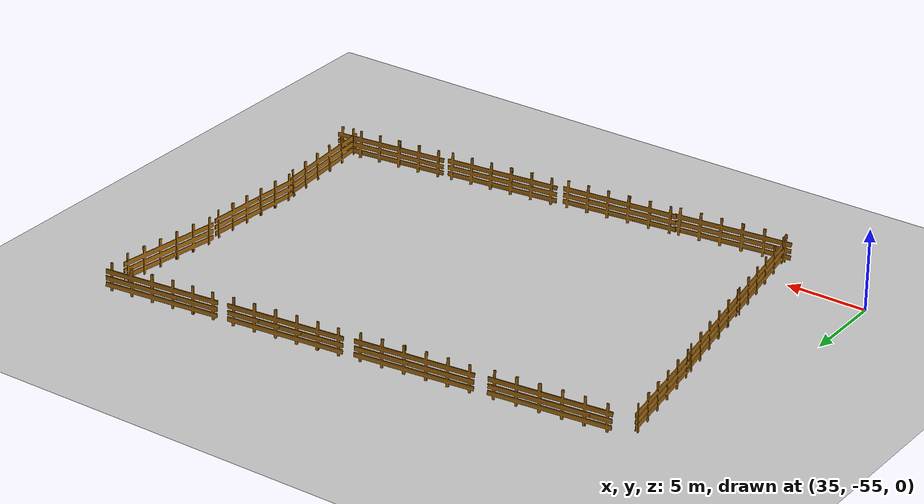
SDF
<sdf version="1.6">
 <world name="default">
  <light name="sun" type="directional">
   <pose>0 0 10 0 -0 0</pose>
   <diffuse>0.8 0.8 0.8 1</diffuse>
   <specular>0.2 0.2 0.2 1</specular>
   <attenuation>
    <range>1000</range>
    <constant>0.9</constant>
    <linear>0.01</linear>
    <quadratic>0.001</quadratic>
   </attenuation>
   <direction>-0.5 0.1 -0.9</direction>
  </light>
  <physics name="default_physics" default="0" type="ode">
   <real_time_update_rate>1000</real_time_update_rate>
   <real_time_factor>1</real_time_factor>
   <max_step_size>0.001</max_step_size>
  </physics>
  <gravity>0 0 -9.8</gravity>
  <magnetic_field>6e-06 2.3e-05 -4.2e-05</magnetic_field>
  <atmosphere type="adiabatic"/>
  <scene>
   <sky><clouds><speed>12</speed></clouds></sky>
   <shadows>1</shadows>
   <ambient>0.4 0.4 0.4 1</ambient>
   <background>0.7 0.7 0.7 1</background>
  </scene>
  <spherical_coordinates>
   <surface_model>EARTH_WGS84</surface_model>
   <latitude_deg>0</latitude_deg>
   <longitude_deg>0</longitude_deg>
   <elevation>0</elevation>
   <heading_deg>0</heading_deg>
  </spherical_coordinates>
  <model name="fence_5">
   <static>1</static>
   <link name="link">
    <inertial>
     <mass>100</mass>
     <inertia><ixx>192.33</ixx><ixy>0</ixy><ixz>0</ixz><iyy>12.33</iyy><iyz>0</iyz><izz>204</izz></inertia>
    </inertial>
    <collision name="collision">
     <geometry><mesh><uri>model://fence_5/meshes/fence_5_brown.dae</uri><scale>1 1 1</scale></mesh></geometry>
    </collision>
    <visual name="visual">
     <geometry><mesh><uri>model://fence_5/meshes/fence_5_brown.dae</uri><scale>1 1 1</scale></mesh></geometry>
    </visual>
   </link>
   <pose>41.6449 -52.737 1.01497 0.014116 0.007603 -1.39043</pose>
  </model>
  <model name="fence_5_clone_0_clone">
   <static>1</static>
   <link name="link">
    <inertial>
     <mass>100</mass>
     <inertia><ixx>192.33</ixx><ixy>0</ixy><ixz>0</ixz><iyy>12.33</iyy><iyz>0</iyz><izz>204</izz></inertia>
    </inertial>
    <collision name="collision">
     <geometry><mesh><uri>model://fence_5/meshes/fence_5_brown.dae</uri><scale>1 1 1</scale></mesh></geometry>
    </collision>
    <visual name="visual">
     <geometry><mesh><uri>model://fence_5/meshes/fence_5_brown.dae</uri><scale>1 1 1</scale></mesh></geometry>
    </visual>
   </link>
   <pose>69.2217 -35.0688 1.89165 -0.006758 0.071374 -1.61301</pose>
  </model>
  <model name="fence_5_clone_0_clone_0">
   <static>1</static>
   <link name="link">
    <inertial>
     <mass>100</mass>
     <inertia><ixx>192.33</ixx><ixy>0</ixy><ixz>0</ixz><iyy>12.33</iyy><iyz>0</iyz><izz>204</izz></inertia>
    </inertial>
    <collision name="collision">
     <geometry><mesh><uri>model://fence_5/meshes/fence_5_brown.dae</uri><scale>1 1 1</scale></mesh></geometry>
    </collision>
    <visual name="visual">
     <geometry><mesh><uri>model://fence_5/meshes/fence_5_brown.dae</uri><scale>1 1 1</scale></mesh></geometry>
    </visual>
   </link>
   <pose>69.2517 -42.5183 1.4512 -0.00172 0.070673 -1.54061</pose>
  </model>
  <model name="fence_5_clone_0_clone_1">
   <static>1</static>
   <link name="link">
    <inertial>
     <mass>100</mass>
     <inertia><ixx>192.33</ixx><ixy>0</ixy><ixz>0</ixz><iyy>12.33</iyy><iyz>0</iyz><izz>204</izz></inertia>
    </inertial>
    <collision name="collision">
     <geometry><mesh><uri>model://fence_5/meshes/fence_5_brown.dae</uri><scale>1 1 1</scale></mesh></geometry>
    </collision>
    <visual name="visual">
     <geometry><mesh><uri>model://fence_5/meshes/fence_5_brown.dae</uri><scale>1 1 1</scale></mesh></geometry>
    </visual>
   </link>
   <pose>69.8432 -49.6932 1.08703 -0.01162 0.02213 -1.47072</pose>
  </model>
  <model name="fence_5_clone_0_clone_1_clone_clone_1">
   <static>1</static>
   <link name="link">
    <inertial>
     <mass>100</mass>
     <inertia><ixx>192.33</ixx><ixy>0</ixy><ixz>0</ixz><iyy>12.33</iyy><iyz>0</iyz><izz>204</izz></inertia>
    </inertial>
    <collision name="collision">
     <geometry><mesh><uri>model://fence_5/meshes/fence_5_brown.dae</uri><scale>1 1 1</scale></mesh></geometry>
    </collision>
    <visual name="visual">
     <geometry><mesh><uri>model://fence_5/meshes/fence_5_brown.dae</uri><scale>1 1 1</scale></mesh></geometry>
    </visual>
   </link>
   <pose>44.7747 -57.3444 0.883617 -0.084624 0.000646 -3.03348</pose>
  </model>
  <model name="fence_5_clone_0_clone_clone_clone_0">
   <static>1</static>
   <link name="link">
    <inertial>
     <mass>100</mass>
     <inertia><ixx>192.33</ixx><ixy>0</ixy><ixz>0</ixz><iyy>12.33</iyy><iyz>0</iyz><izz>204</izz></inertia>
    </inertial>
    <collision name="collision">
     <geometry><mesh><uri>model://fence_5/meshes/fence_5_brown.dae</uri><scale>1 1 1</scale></mesh></geometry>
    </collision>
    <visual name="visual">
     <geometry><mesh><uri>model://fence_5/meshes/fence_5_brown.dae</uri><scale>1 1 1</scale></mesh></geometry>
    </visual>
   </link>
   <pose>41.5544 -33.278 1.57982 0.084583 -0.00842 0.112795</pose>
  </model>
  <model name="grass_ground_plane">
   <static>1</static>
   <link name="link">
    <collision name="collision">
     <geometry><plane><normal>0 0 1</normal><size>200 200</size></plane></geometry>
     <surface><friction><ode><mu>0.5</mu><mu2>0.5</mu2></ode></friction></surface>
    </collision>
    <visual name="visual">
     <cast_shadows>0</cast_shadows>
     <geometry><plane><normal>0 0 1</normal><size>200 200</size></plane></geometry>
     <material>
      <script>
       <uri>model://grass_ground_plane/materials/scripts/grass_ground_plane.material</uri>
       <name>GrassGroundPlane/Image</name>
      </script>
     </material>
    </visual>
   </link>
  </model>
  <model name="fence_5_clone_0_clone_1_clone_clone_1_clone">
   <static>1</static>
   <link name="link">
    <inertial>
     <mass>100</mass>
     <inertia><ixx>192.33</ixx><ixy>0</ixy><ixz>0</ixz><iyy>12.33</iyy><iyz>0</iyz><izz>204</izz></inertia>
    </inertial>
    <collision name="collision">
     <geometry><mesh><uri>model://fence_5/meshes/fence_5_brown.dae</uri><scale>1 1 1</scale></mesh></geometry>
    </collision>
    <visual name="visual">
     <geometry><mesh><uri>model://fence_5/meshes/fence_5_brown.dae</uri><scale>1 1 1</scale></mesh></geometry>
    </visual>
   </link>
   <pose>51.8829 -56.4713 0.89101 -0.084624 0.000646 -3.03348</pose>
  </model>
  <model name="fence_5_clone_0_clone_1_clone_clone_1_clone_0">
   <static>1</static>
   <link name="link">
    <inertial>
     <mass>100</mass>
     <inertia><ixx>192.33</ixx><ixy>0</ixy><ixz>0</ixz><iyy>12.33</iyy><iyz>0</iyz><izz>204</izz></inertia>
    </inertial>
    <collision name="collision">
     <geometry><mesh><uri>model://fence_5/meshes/fence_5_brown.dae</uri><scale>1 1 1</scale></mesh></geometry>
    </collision>
    <visual name="visual">
     <geometry><mesh><uri>model://fence_5/meshes/fence_5_brown.dae</uri><scale>1 1 1</scale></mesh></geometry>
    </visual>
   </link>
   <pose>59.4161 -55.4745 0.908181 -0.084624 0.000646 -3.03348</pose>
  </model>
  <model name="fence_5_clone_0_clone_1_clone_clone_1_clone_1">
   <static>1</static>
   <link name="link">
    <inertial>
     <mass>100</mass>
     <inertia><ixx>192.33</ixx><ixy>0</ixy><ixz>0</ixz><iyy>12.33</iyy><iyz>0</iyz><izz>204</izz></inertia>
    </inertial>
    <collision name="collision">
     <geometry><mesh><uri>model://fence_5/meshes/fence_5_brown.dae</uri><scale>1 1 1</scale></mesh></geometry>
    </collision>
    <visual name="visual">
     <geometry><mesh><uri>model://fence_5/meshes/fence_5_brown.dae</uri><scale>1 1 1</scale></mesh></geometry>
    </visual>
   </link>
   <pose>66.8481 -54.5349 0.922786 -0.084624 0.000646 -3.03348</pose>
  </model>
  <model name="fence_5_clone_1">
   <static>1</static>
   <link name="link">
    <inertial>
     <mass>100</mass>
     <inertia><ixx>192.33</ixx><ixy>0</ixy><ixz>0</ixz><iyy>12.33</iyy><iyz>0</iyz><izz>204</izz></inertia>
    </inertial>
    <collision name="collision">
     <geometry><mesh><uri>model://fence_5/meshes/fence_5_brown.dae</uri><scale>1 1 1</scale></mesh></geometry>
    </collision>
    <visual name="visual">
     <geometry><mesh><uri>model://fence_5/meshes/fence_5_brown.dae</uri><scale>1 1 1</scale></mesh></geometry>
    </visual>
   </link>
   <pose>40.2743 -45.6765 1.23155 0.014116 -5.5e-05 -1.39054</pose>
  </model>
  <model name="fence_5_clone_2">
   <static>1</static>
   <link name="link">
    <inertial>
     <mass>100</mass>
     <inertia><ixx>192.33</ixx><ixy>0</ixy><ixz>0</ixz><iyy>12.33</iyy><iyz>0</iyz><izz>204</izz></inertia>
    </inertial>
    <collision name="collision">
     <geometry><mesh><uri>model://fence_5/meshes/fence_5_brown.dae</uri><scale>1 1 1</scale></mesh></geometry>
    </collision>
    <visual name="visual">
     <geometry><mesh><uri>model://fence_5/meshes/fence_5_brown.dae</uri><scale>1 1 1</scale></mesh></geometry>
    </visual>
   </link>
   <pose>38.8958 -38.4611 1.38748 0.014125 0.035917 -1.39003</pose>
  </model>
  <model name="fence_5_clone_0_clone_clone_clone_0_clone">
   <static>1</static>
   <link name="link">
    <inertial>
     <mass>100</mass>
     <inertia><ixx>192.33</ixx><ixy>0</ixy><ixz>0</ixz><iyy>12.33</iyy><iyz>0</iyz><izz>204</izz></inertia>
    </inertial>
    <collision name="collision">
     <geometry><mesh><uri>model://fence_5/meshes/fence_5_brown.dae</uri><scale>1 1 1</scale></mesh></geometry>
    </collision>
    <visual name="visual">
     <geometry><mesh><uri>model://fence_5/meshes/fence_5_brown.dae</uri><scale>1 1 1</scale></mesh></geometry>
    </visual>
   </link>
   <pose>49.572 -32.3723 1.6064 0.084583 -0.00842 0.112795</pose>
  </model>
  <model name="fence_5_clone_0_clone_clone_clone_0_clone_0">
   <static>1</static>
   <link name="link">
    <inertial>
     <mass>100</mass>
     <inertia><ixx>192.33</ixx><ixy>0</ixy><ixz>0</ixz><iyy>12.33</iyy><iyz>0</iyz><izz>204</izz></inertia>
    </inertial>
    <collision name="collision">
     <geometry><mesh><uri>model://fence_5/meshes/fence_5_brown.dae</uri><scale>1 1 1</scale></mesh></geometry>
    </collision>
    <visual name="visual">
     <geometry><mesh><uri>model://fence_5/meshes/fence_5_brown.dae</uri><scale>1 1 1</scale></mesh></geometry>
    </visual>
   </link>
   <pose>57.4396 -31.4279 1.64267 0.084583 -0.00842 0.112795</pose>
  </model>
  <model name="fence_5_clone_0_clone_clone_clone_0_clone_1">
   <static>1</static>
   <link name="link">
    <inertial>
     <mass>100</mass>
     <inertia><ixx>192.33</ixx><ixy>0</ixy><ixz>0</ixz><iyy>12.33</iyy><iyz>0</iyz><izz>204</izz></inertia>
    </inertial>
    <collision name="collision">
     <geometry><mesh><uri>model://fence_5/meshes/fence_5_brown.dae</uri><scale>1 1 1</scale></mesh></geometry>
    </collision>
    <visual name="visual">
     <geometry><mesh><uri>model://fence_5/meshes/fence_5_brown.dae</uri><scale>1 1 1</scale></mesh></geometry>
    </visual>
   </link>
   <pose>65.3637 -30.5997 1.65271 0.084583 -0.00842 0.112795</pose>
  </model>
 </world>
</sdf>
